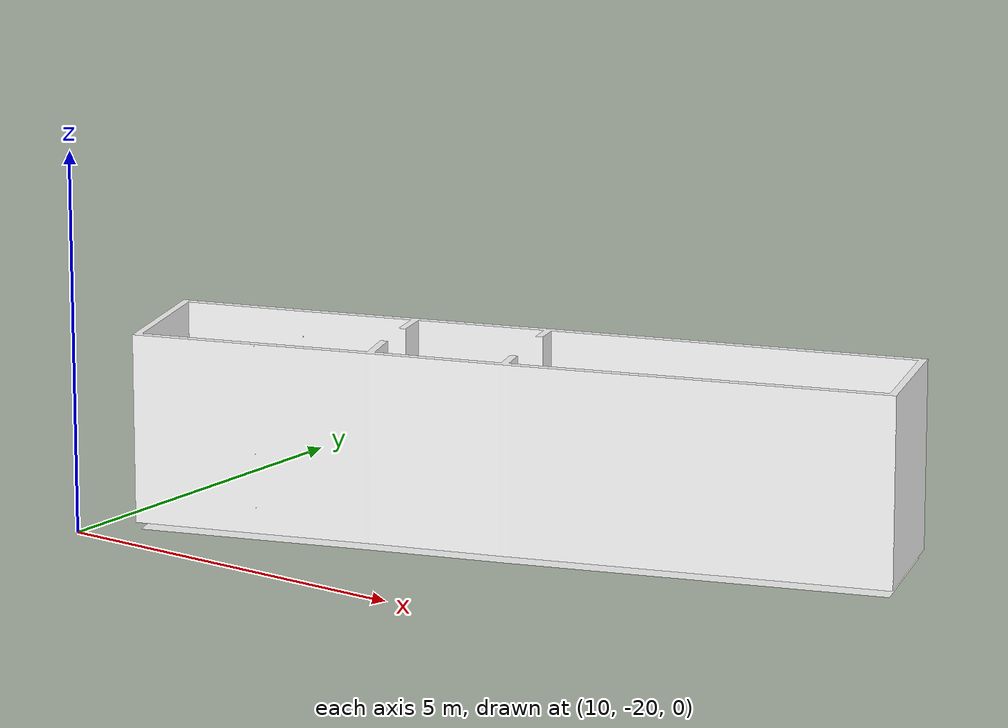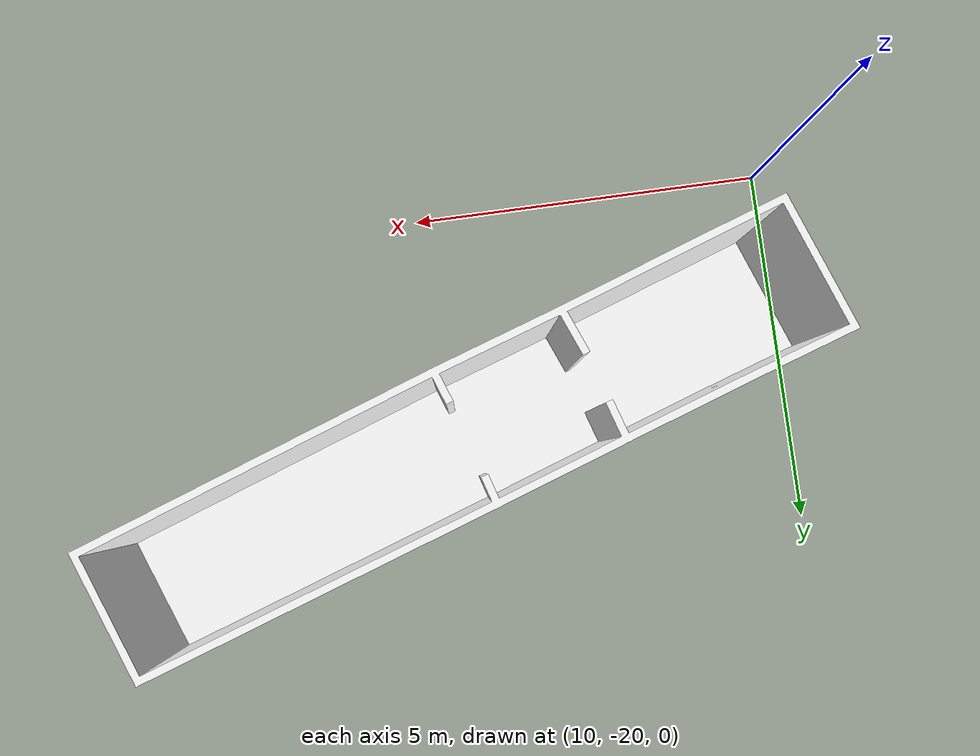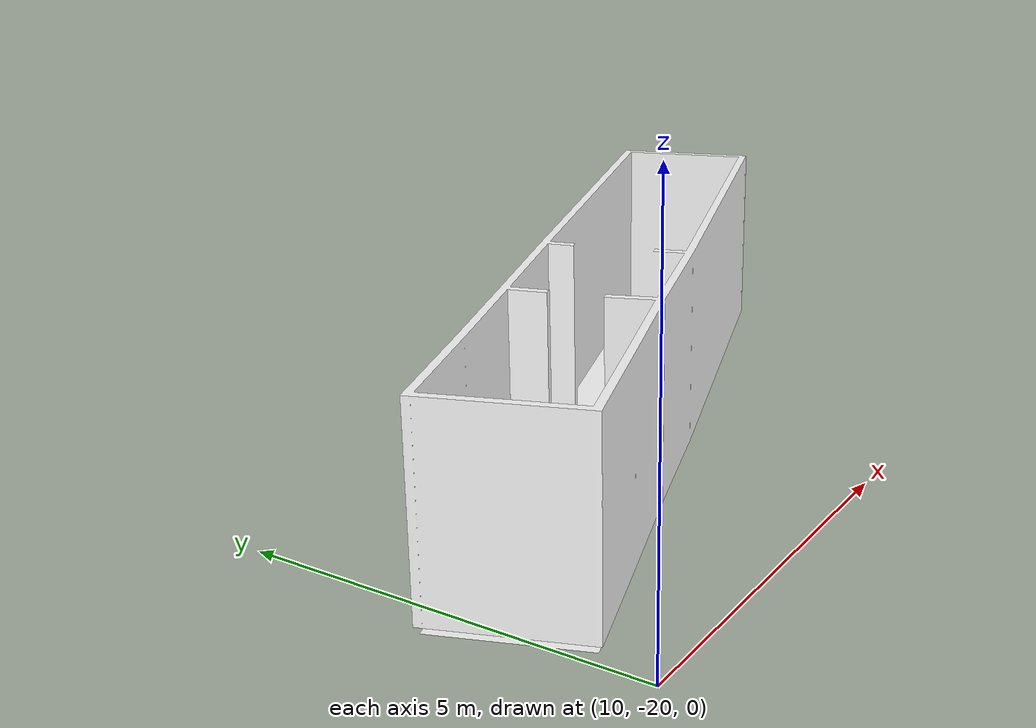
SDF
<?xml version='1.0' encoding='utf-8'?>
<sdf version="1.7">
  <model name="new_new">
    <static>true</static>
    <link name="floor_1">
      <visual name="visual">
        <geometry>
          <mesh>
            <uri>model://new_new/meshes/floor_1.obj</uri>
          </mesh>
        </geometry>
        <material>
          <diffuse>1.0 1.0 1.0</diffuse>
          <specular>0.1 0.1 0.1</specular>
          <pbr>
            <metal>
              <metalness>0.0</metalness>
              <albedo_map>model://new_new/meshes/blue_linoleum.png</albedo_map>
            </metal>
          </pbr>
          <script>
            <uri>model://new_new/meshes/</uri>
            <name>floor_1_Diffuse</name>
          </script>
        </material>
      </visual>
      <collision name="collision">
        <geometry>
          <mesh>
            <uri>model://new_new/meshes/floor_1.obj</uri>
          </mesh>
        </geometry>
        <surface>
          <contact>
            <collide_bitmask>0x01</collide_bitmask>
          </contact>
        </surface>
      </collision>
    </link>
    <link name="wall_1">
      <visual name="wall_1">
        <geometry>
          <mesh>
            <uri>model://new_new/meshes/wall_1.obj</uri>
          </mesh>
        </geometry>
        <material>
          <diffuse>1.0 1.0 1.0</diffuse>
          <specular>0.1 0.1 0.1</specular>
          <pbr>
            <metal>
              <metalness>0.0</metalness>
              <albedo_map>model://new_new/meshes/default.png</albedo_map>
            </metal>
          </pbr>
          <script>
            <uri>model://new_new/meshes/</uri>
            <name>wall_1_Diffuse</name>
          </script>
        </material>
      </visual>
      <collision name="collision">
        <geometry>
          <mesh>
            <uri>model://new_new/meshes/wall_1.obj</uri>
          </mesh>
        </geometry>
        <surface>
          <contact>
            <collide_bitmask>0x01</collide_bitmask>
          </contact>
        </surface>
      </collision>
      <pose>9.637440194752784 -19.213117655914086 0 0 0 0</pose>
    </link>
  </model>
</sdf>
